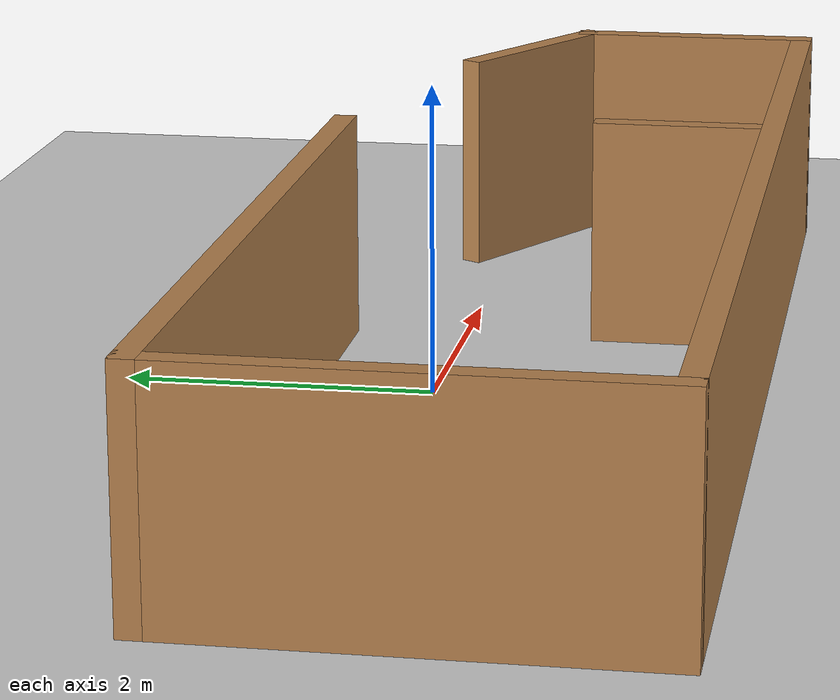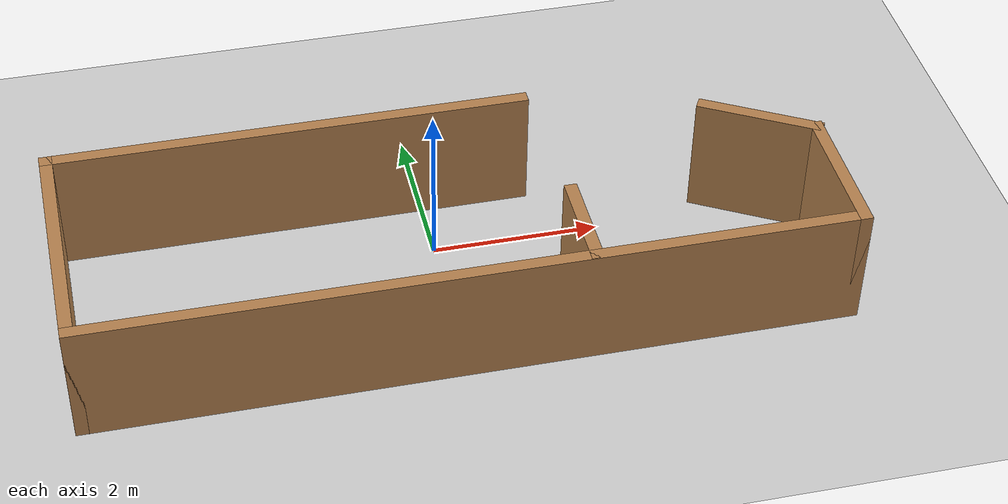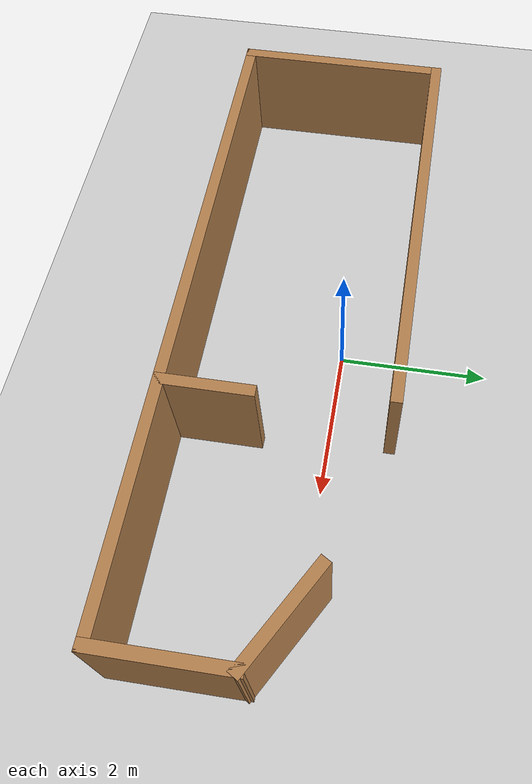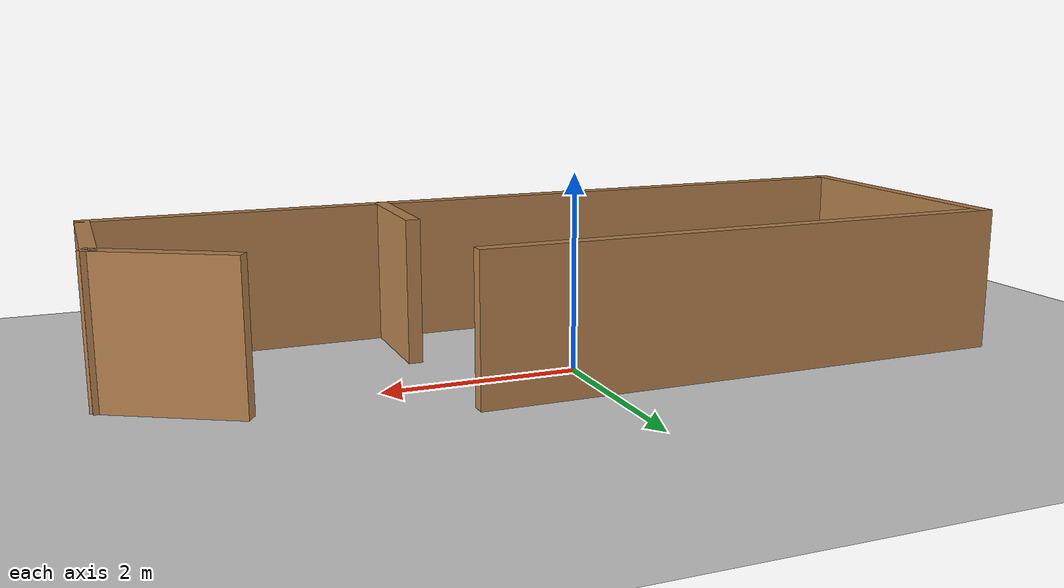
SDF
<sdf version="1.7">
 <world name="default">
  <light name="sun" type="directional">
   <pose>0 0 10 0 -0 0</pose>
   <diffuse>0.8 0.8 0.8 1</diffuse>
   <specular>0.2 0.2 0.2 1</specular>
   <attenuation>
    <range>1000</range>
    <constant>0.9</constant>
    <linear>0.01</linear>
    <quadratic>0.001</quadratic>
   </attenuation>
   <direction>-0.5 0.1 -0.9</direction>
   <spot><inner_angle>0</inner_angle><outer_angle>0</outer_angle><falloff>0</falloff></spot>
  </light>
  <model name="ground_plane">
   <static>1</static>
   <link name="link">
    <collision name="collision">
     <geometry><plane><normal>0 0 1</normal><size>100 100</size></plane></geometry>
     <surface>
      <contact><collide_bitmask>65535</collide_bitmask></contact>
      <friction><ode><mu>100</mu><mu2>50</mu2></ode></friction>
     </surface>
    </collision>
    <visual name="visual">
     <cast_shadows>0</cast_shadows>
     <geometry><plane><normal>0 0 1</normal><size>100 100</size></plane></geometry>
     <material>
      <script><uri>file://media/materials/scripts/gazebo.material</uri><name>Gazebo/Grey</name></script>
     </material>
    </visual>
   </link>
  </model>
  <gravity>0 0 -9.8</gravity>
  <magnetic_field>6e-06 2.3e-05 -4.2e-05</magnetic_field>
  <atmosphere type="adiabatic"/>
  <physics type="ode">
   <max_step_size>0.001</max_step_size>
   <real_time_factor>1</real_time_factor>
   <real_time_update_rate>1000</real_time_update_rate>
  </physics>
  <scene><ambient>0.4 0.4 0.4 1</ambient><background>0.7 0.7 0.7 1</background><shadows>1</shadows></scene>
  <audio><device>default</device></audio>
  <spherical_coordinates>
   <surface_model>EARTH_WGS84</surface_model>
   <latitude_deg>0</latitude_deg>
   <longitude_deg>0</longitude_deg>
   <elevation>0</elevation>
   <heading_deg>0</heading_deg>
  </spherical_coordinates>
  <model name="outer_wall">
   <pose>0.070732 -0.239781 0 0 -0 0</pose>
   <link name="Wall_2">
    <collision name="Wall_2_Collision">
     <geometry><box><size>5.75 0.15 1.5</size></box></geometry>
     <pose>0 0 0.75 0 -0 0</pose>
    </collision>
    <visual name="Wall_2_Visual">
     <pose>0 0 0.75 0 -0 0</pose>
     <geometry><box><size>5.75 0.15 1.5</size></box></geometry>
     <material>
      <script><uri>file://media/materials/scripts/gazebo.material</uri><name>Gazebo/Wood</name></script>
      <ambient>1 1 1 1</ambient>
     </material>
     <meta><layer>0</layer></meta>
    </visual>
    <pose>-1.63875 1.0525 0 0 -0 3.14159</pose>
   </link>
   <link name="Wall_3">
    <collision name="Wall_3_Collision">
     <geometry><box><size>3 0.15 1.5</size></box></geometry>
     <pose>0 0 0.75 0 -0 0</pose>
    </collision>
    <visual name="Wall_3_Visual">
     <pose>0 0 0.75 0 -0 0</pose>
     <geometry><box><size>3 0.15 1.5</size></box></geometry>
     <material>
      <script><uri>file://media/materials/scripts/gazebo.material</uri><name>Gazebo/Wood</name></script>
      <ambient>1 1 1 1</ambient>
     </material>
     <meta><layer>0</layer></meta>
    </visual>
    <pose>-4.43875 -0.3725 0 0 -0 -1.5708</pose>
   </link>
   <link name="Wall_4">
    <collision name="Wall_4_Collision">
     <geometry><box><size>9 0.15 1.5</size></box></geometry>
     <pose>0 0 0.75 0 -0 0</pose>
    </collision>
    <visual name="Wall_4_Visual">
     <pose>0 0 0.75 0 -0 0</pose>
     <geometry><box><size>9 0.15 1.5</size></box></geometry>
     <material>
      <script><uri>file://media/materials/scripts/gazebo.material</uri><name>Gazebo/Wood</name></script>
      <ambient>1 1 1 1</ambient>
     </material>
     <meta><layer>0</layer></meta>
    </visual>
    <pose>-0.013752 -1.7975 0 0 -0 0</pose>
   </link>
   <link name="Wall_5">
    <collision name="Wall_5_Collision">
     <geometry><box><size>1.75 0.15 1.5</size></box></geometry>
     <pose>0 0 0.75 0 -0 0</pose>
    </collision>
    <visual name="Wall_5_Visual">
     <pose>0 0 0.75 0 -0 0</pose>
     <geometry><box><size>1.75 0.15 1.5</size></box></geometry>
     <material>
      <script><uri>file://media/materials/scripts/gazebo.material</uri><name>Gazebo/Wood</name></script>
      <ambient>1 1 1 1</ambient>
     </material>
     <meta><layer>0</layer></meta>
    </visual>
    <pose>4.41125 -0.9975 0 0 -0 1.5708</pose>
   </link>
   <link name="Wall_6">
    <collision name="Wall_6_Collision">
     <geometry><box><size>1.5 0.15 1.5</size></box></geometry>
     <pose>0 0 0.75 0 -0 0</pose>
    </collision>
    <visual name="Wall_6_Visual">
     <pose>0 0 0.75 0 -0 0</pose>
     <geometry><box><size>1.5 0.15 1.5</size></box></geometry>
     <material>
      <script><uri>file://media/materials/scripts/gazebo.material</uri><name>Gazebo/Wood</name></script>
      <ambient>1 1 1 1</ambient>
     </material>
     <meta><layer>0</layer></meta>
    </visual>
    <pose>3.82675 0.14 0 0 -0 2.61794</pose>
   </link>
   <static>1</static>
  </model>
  <model name="inner_wall_1250">
   <pose>2.28844 -0.588158 0 0 -0 0</pose>
   <link name="Wall_8">
    <collision name="Wall_8_Collision">
     <geometry><box><size>1.25 0.15 1.5</size></box></geometry>
     <pose>0 0 0.75 0 -0 0</pose>
    </collision>
    <visual name="Wall_8_Visual">
     <pose>0 0 0.75 0 -0 0</pose>
     <geometry><box><size>1.25 0.15 1.5</size></box></geometry>
     <material>
      <script><uri>file://media/materials/scripts/gazebo.material</uri><name>Gazebo/Wood</name></script>
      <ambient>1 1 1 1</ambient>
     </material>
     <meta><layer>0</layer></meta>
    </visual>
    <pose>-0.8875 -0.8875 0 0 -0 1.5708</pose>
   </link>
   <static>1</static>
  </model>
 </world>
</sdf>
